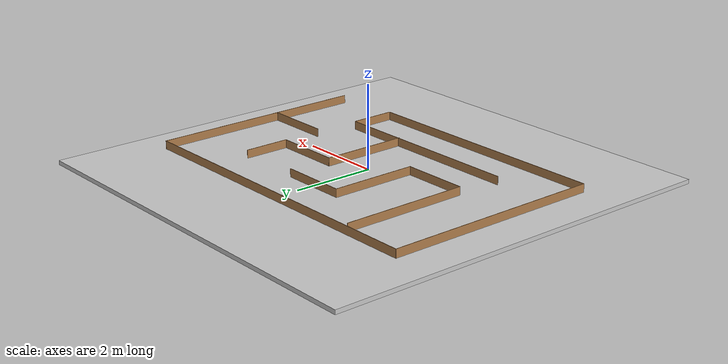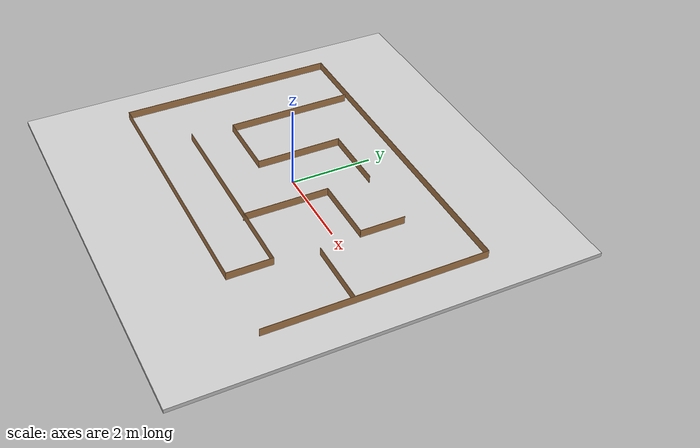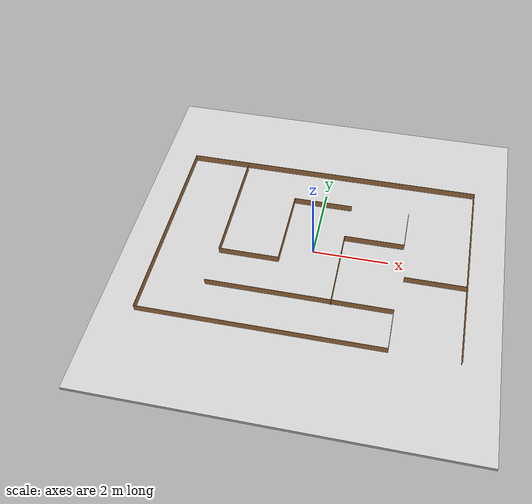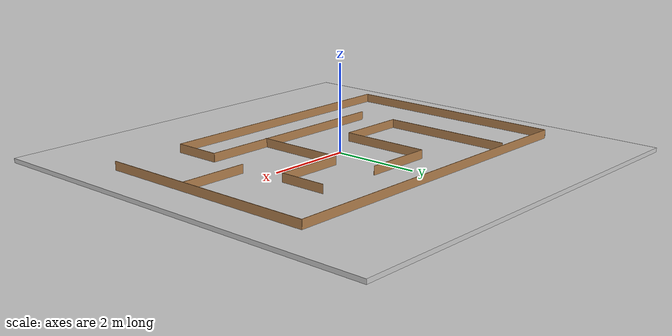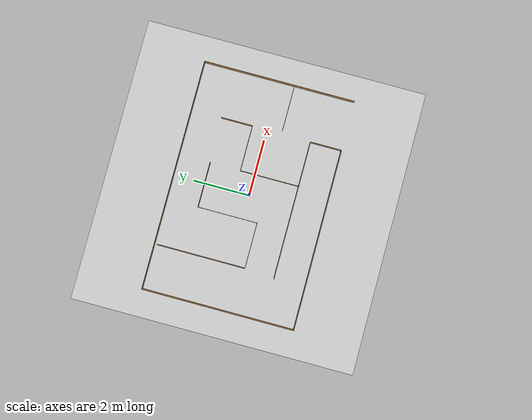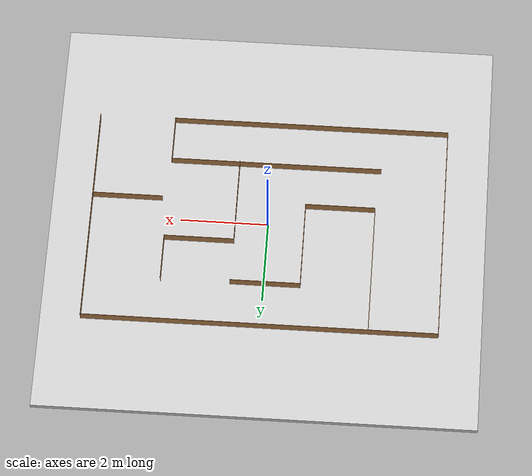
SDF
<?xml version='1.0'?>
<sdf version='1.6'>
  <world name='tight_maze_world'>
    <!-- Core system plugins -->
    <plugin
      filename="gz-sim-physics-system"
      name="gz::sim::systems::Physics">
    </plugin>
    <plugin
      filename="gz-sim-user-commands-system"
      name="gz::sim::systems::UserCommands">
    </plugin>
    <plugin
      filename="gz-sim-scene-broadcaster-system"
      name="gz::sim::systems::SceneBroadcaster">
    </plugin>
    <plugin
      filename="gz-sim-sensors-system"
      name="gz::sim::systems::Sensors">
      <render_engine>ogre2</render_engine>
    </plugin>
    <plugin
      filename="gz-sim-imu-system"
      name="gz::sim::systems::Imu">
    </plugin>

    <!-- Maze floor -->
    <model name="maze_floor">
      <static>true</static>
      <link name="link">
        <visual name="visual">
          <geometry>
            <box>
              <size>10 10 0.1</size>
            </box>
          </geometry>
          <material>
            <ambient>0.8 0.8 0.8 1</ambient>
            <diffuse>0.8 0.8 0.8 1</diffuse>
          </material>
        </visual>
        <collision name="collision">
          <geometry>
            <box>
              <size>10 10 0.1</size>
            </box>
          </geometry>
        </collision>
      </link>
      <pose>0 0 -0.05 0 0 0</pose>
    </model>

    <!-- Your maze model -->
    <model name='maze'>
    <pose frame=''>0.0245 0.032 0 0 -0 0</pose>
    <link name='Wall_0'>
      <collision name='Wall_0_Collision'>
        <geometry>
          <box>
            <size>5.36 0.01 0.2</size>
          </box>
        </geometry>
        <pose frame=''>0 0 0.1 0 -0 0</pose>
      </collision>
      <visual name='Wall_0_Visual'>
        <pose frame=''>0 0 0.1 0 -0 0</pose>
        <geometry>
          <box>
            <size>5.36 0.01 0.2</size>
          </box>
        </geometry>
        <material>
          <script>
            <uri>file://media/materials/scripts/gazebo.material</uri>
            <name>Gazebo/Wood</name>
          </script>
          <ambient>0.921569 0.807843 0.615686 1</ambient>
        </material>
      </visual>
      <pose frame=''>-4.05 0 0 0 0 -1.57098</pose>
    </link>
    <link name='Wall_1'>
      <collision name='Wall_1_Collision'>
        <geometry>
          <box>
            <size>6.3605 0.01 0.2</size>
          </box>
        </geometry>
        <pose frame=''>0 0 0.1 0 -0 0</pose>
      </collision>
      <visual name='Wall_1_Visual'>
        <pose frame=''>0 0 0.1 0 -0 0</pose>
        <geometry>
          <box>
            <size>6.3605 0.01 0.2</size>
          </box>
        </geometry>
        <material>
          <script>
            <uri>file://media/materials/scripts/gazebo.material</uri>
            <name>Gazebo/Wood</name>
          </script>
          <ambient>0.921569 0.807843 0.615686 1</ambient>
        </material>
      </visual>
      <pose frame=''>-0.875 -2.675 0 0 -0 0</pose>
    </link>
    <link name='Wall_10'>
      <collision name='Wall_10_Collision'>
        <geometry>
          <box>
            <size>5.36 0.01 0.2</size>
          </box>
        </geometry>
        <pose frame=''>0 0 0.1 0 -0 0</pose>
      </collision>
      <visual name='Wall_10_Visual'>
        <pose frame=''>0 0 0.1 0 -0 0</pose>
        <geometry>
          <box>
            <size>5.36 0.01 0.2</size>
          </box>
        </geometry>
        <material>
          <script>
            <uri>file://media/materials/scripts/gazebo.material</uri>
            <name>Gazebo/Wood</name>
          </script>
          <ambient>0.921569 0.807843 0.615686 1</ambient>
        </material>
      </visual>
      <pose frame=''>4.05 0 0 0 0 -1.57098</pose>
    </link>
    <link name='Wall_12'>
      <collision name='Wall_12_Collision'>
        <geometry>
          <box>
            <size>1.61 0.01 0.2</size>
          </box>
        </geometry>
        <pose frame=''>0 0 0.1 0 -0 0</pose>
      </collision>
      <visual name='Wall_12_Visual'>
        <pose frame=''>0 0 0.1 0 -0 0</pose>
        <geometry>
          <box>
            <size>1.61 0.01 0.2</size>
          </box>
        </geometry>
        <material>
          <script>
            <uri>file://media/materials/scripts/gazebo.material</uri>
            <name>Gazebo/Wood</name>
          </script>
          <ambient>0.921569 0.807843 0.615686 1</ambient>
        </material>
      </visual>
      <pose frame=''>3.2415 -0.5435 0 0 -0 3.14097</pose>
    </link>
    <link name='Wall_14'>
      <collision name='Wall_14_Collision'>
        <geometry>
          <box>
            <size>3.1095 0.01 0.2</size>
          </box>
        </geometry>
        <pose frame=''>0 0 0.1 0 -0 0</pose>
      </collision>
      <visual name='Wall_14_Visual'>
        <pose frame=''>0 0 0.1 0 -0 0</pose>
        <geometry>
          <box>
            <size>3.1095 0.01 0.2</size>
          </box>
        </geometry>
        <material>
          <script>
            <uri>file://media/materials/scripts/gazebo.material</uri>
            <name>Gazebo/Wood</name>
          </script>
          <ambient>0.921569 0.807843 0.615686 1</ambient>
        </material>
      </visual>
      <pose frame=''>-2.4625 1.021 0 0 0 -1.5708</pose>
    </link>
    <link name='Wall_15'>
      <collision name='Wall_15_Collision'>
        <geometry>
          <box>
            <size>1.61 0.01 0.2</size>
          </box>
        </geometry>
        <pose frame=''>0 0 0.1 0 -0 0</pose>
      </collision>
      <visual name='Wall_15_Visual'>
        <pose frame=''>0 0 0.1 0 -0 0</pose>
        <geometry>
          <box>
            <size>1.61 0.01 0.2</size>
          </box>
        </geometry>
        <material>
          <script>
            <uri>file://media/materials/scripts/gazebo.material</uri>
            <name>Gazebo/Wood</name>
          </script>
          <ambient>0.921569 0.807843 0.615686 1</ambient>
        </material>
      </visual>
      <pose frame=''>-1.6625 -0.529 0 0 -0 0</pose>
    </link>
    <link name='Wall_16'>
      <collision name='Wall_16_Collision'>
        <geometry>
          <box>
            <size>2.11 0.01 0.2</size>
          </box>
        </geometry>
        <pose frame=''>0 0 0.1 0 -0 0</pose>
      </collision>
      <visual name='Wall_16_Visual'>
        <pose frame=''>0 0 0.1 0 -0 0</pose>
        <geometry>
          <box>
            <size>2.11 0.01 0.2</size>
          </box>
        </geometry>
        <material>
          <script>
            <uri>file://media/materials/scripts/gazebo.material</uri>
            <name>Gazebo/Wood</name>
          </script>
          <ambient>0.921569 0.807843 0.615686 1</ambient>
        </material>
      </visual>
      <pose frame=''>-0.8625 0.521 0 0 -0 1.5708</pose>
    </link>
    <link name='Wall_17'>
      <collision name='Wall_17_Collision'>
        <geometry>
          <box>
            <size>1.6095 0.01 0.2</size>
          </box>
        </geometry>
        <pose frame=''>0 0 0.1 0 -0 0</pose>
      </collision>
      <visual name='Wall_17_Visual'>
        <pose frame=''>0 0 0.1 0 -0 0</pose>
        <geometry>
          <box>
            <size>1.6095 0.01 0.2</size>
          </box>
        </geometry>
        <material>
          <script>
            <uri>file://media/materials/scripts/gazebo.material</uri>
            <name>Gazebo/Wood</name>
          </script>
          <ambient>0.921569 0.807843 0.615686 1</ambient>
        </material>
      </visual>
      <pose frame=''>-0.0625 1.571 0 0 -0 0</pose>
    </link>
    <link name='Wall_2'>
      <collision name='Wall_2_Collision'>
        <geometry>
          <box>
            <size>1.11 0.01 0.2</size>
          </box>
        </geometry>
        <pose frame=''>0 0 0.1 0 -0 0</pose>
      </collision>
      <visual name='Wall_2_Visual'>
        <pose frame=''>0 0 0.1 0 -0 0</pose>
        <geometry>
          <box>
            <size>1.11 0.01 0.2</size>
          </box>
        </geometry>
        <material>
          <script>
            <uri>file://media/materials/scripts/gazebo.material</uri>
            <name>Gazebo/Wood</name>
          </script>
          <ambient>0.921569 0.807843 0.615686 1</ambient>
        </material>
      </visual>
      <pose frame=''>2.3005 -2.125 0 0 -0 1.5708</pose>
    </link>
    <link name='Wall_3'>
      <collision name='Wall_3_Collision'>
        <geometry>
          <box>
            <size>4.8605 0.01 0.2</size>
          </box>
        </geometry>
        <pose frame=''>0 0 0.1 0 -0 0</pose>
      </collision>
      <visual name='Wall_3_Visual'>
        <pose frame=''>0 0 0.1 0 -0 0</pose>
        <geometry>
          <box>
            <size>4.8605 0.01 0.2</size>
          </box>
        </geometry>
        <material>
          <script>
            <uri>file://media/materials/scripts/gazebo.material</uri>
            <name>Gazebo/Wood</name>
          </script>
          <ambient>0.921569 0.807843 0.615686 1</ambient>
        </material>
      </visual>
      <pose frame=''>-0.125 -1.575 0 0 -0 3.14159</pose>
    </link>
    <link name='Wall_5'>
      <collision name='Wall_5_Collision'>
        <geometry>
          <box>
            <size>2.11 0.01 0.2</size>
          </box>
        </geometry>
        <pose frame=''>0 0 0.1 0 -0 0</pose>
      </collision>
      <visual name='Wall_5_Visual'>
        <pose frame=''>0 0 0.1 0 -0 0</pose>
        <geometry>
          <box>
            <size>2.11 0.01 0.2</size>
          </box>
        </geometry>
        <material>
          <script>
            <uri>file://media/materials/scripts/gazebo.material</uri>
            <name>Gazebo/Wood</name>
          </script>
          <ambient>0.921569 0.807843 0.615686 1</ambient>
        </material>
      </visual>
      <pose frame=''>0.7225 -0.553 0 0 -0 1.5708</pose>
    </link>
    <link name='Wall_6'>
      <collision name='Wall_6_Collision'>
        <geometry>
          <box>
            <size>1.61 0.01 0.2</size>
          </box>
        </geometry>
        <pose frame=''>0 0 0.1 0 -0 0</pose>
      </collision>
      <visual name='Wall_6_Visual'>
        <pose frame=''>0 0 0.1 0 -0 0</pose>
        <geometry>
          <box>
            <size>1.61 0.01 0.2</size>
          </box>
        </geometry>
        <material>
          <script>
            <uri>file://media/materials/scripts/gazebo.material</uri>
            <name>Gazebo/Wood</name>
          </script>
          <ambient>0.921569 0.807843 0.615686 1</ambient>
        </material>
      </visual>
      <pose frame=''>1.5225 0.497 0 0 -0 0</pose>
    </link>
    <link name='Wall_7'>
      <collision name='Wall_7_Collision'>
        <geometry>
          <box>
            <size>1.11 0.01 0.2</size>
          </box>
        </geometry>
        <pose frame=''>0 0 0.1 0 -0 0</pose>
      </collision>
      <visual name='Wall_7_Visual'>
        <pose frame=''>0 0 0.1 0 -0 0</pose>
        <geometry>
          <box>
            <size>1.11 0.01 0.2</size>
          </box>
        </geometry>
        <material>
          <script>
            <uri>file://media/materials/scripts/gazebo.material</uri>
            <name>Gazebo/Wood</name>
          </script>
          <ambient>0.921569 0.807843 0.615686 1</ambient>
        </material>
      </visual>
      <pose frame=''>2.3225 1.047 0 0 -0 1.5708</pose>
    </link>
    <link name='Wall_9'>
      <collision name='Wall_9_Collision'>
        <geometry>
          <box>
            <size>8.1095 0.01 0.2</size>
          </box>
        </geometry>
        <pose frame=''>0 0 0.1 0 -0 0</pose>
      </collision>
      <visual name='Wall_9_Visual'>
        <pose frame=''>0 0 0.1 0 -0 0</pose>
        <geometry>
          <box>
            <size>8.1095 0.01 0.2</size>
          </box>
        </geometry>
        <material>
          <script>
            <uri>file://media/materials/scripts/gazebo.material</uri>
            <name>Gazebo/Wood</name>
          </script>
          <ambient>0.921569 0.807843 0.615686 1</ambient>
        </material>
      </visual>
      <pose frame=''>0.0005 2.675 0 0 -0 0</pose>
    </link>
    <static>1</static>
  </model>

    <!-- Lighting -->
    <light type="directional" name="sun">
      <cast_shadows>true</cast_shadows>
      <pose>0 0 10 0 0 0</pose>
      <diffuse>0.8 0.8 0.8 1</diffuse>
      <specular>0.2 0.2 0.2 1</specular>
      <attenuation>
        <range>1000</range>
        <constant>0.9</constant>
        <linear>0.01</linear>
        <quadratic>0.001</quadratic>
      </attenuation>
      <direction>-0.5 0.1 -0.9</direction>
    </light>

    <!-- Physics -->
    <gravity>0 0 -9.8</gravity>
    <magnetic_field>6e-06 2.3e-05 -4.2e-05</magnetic_field>

  </world>
</sdf>
